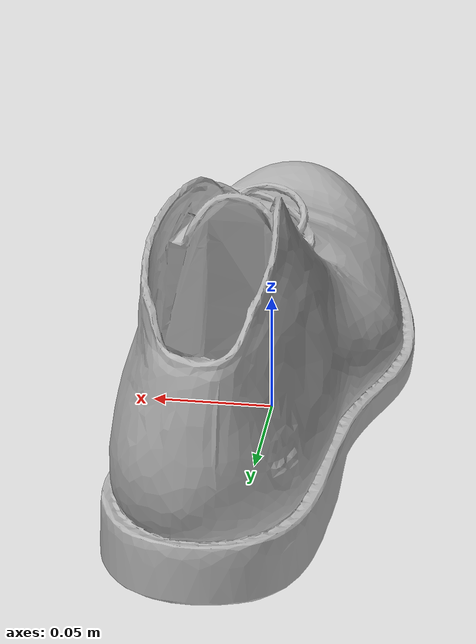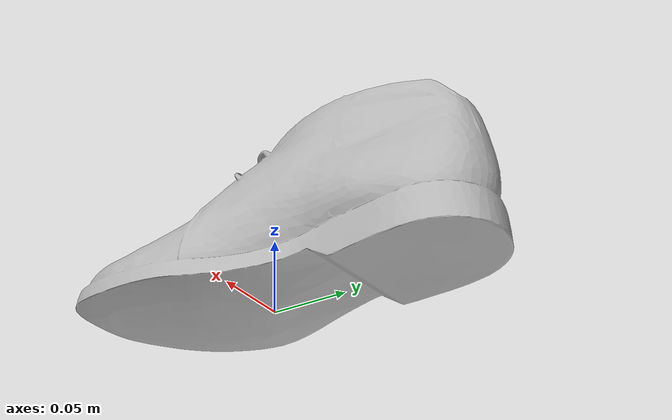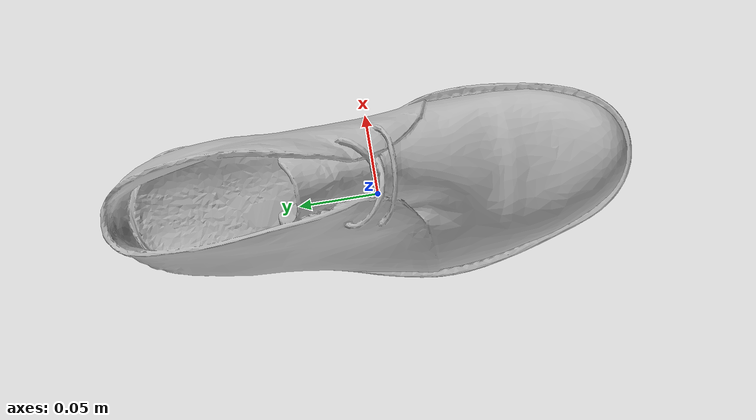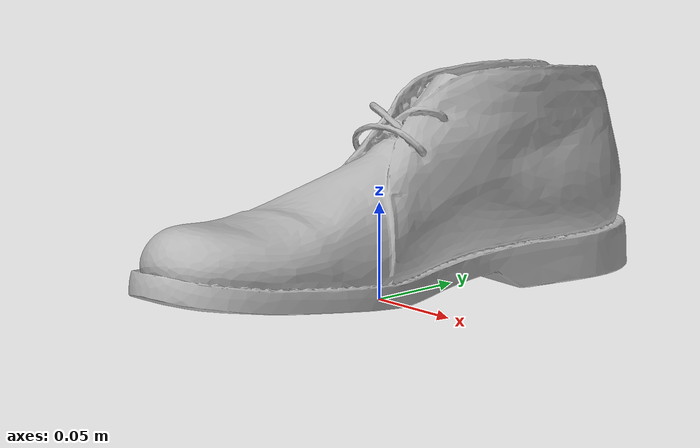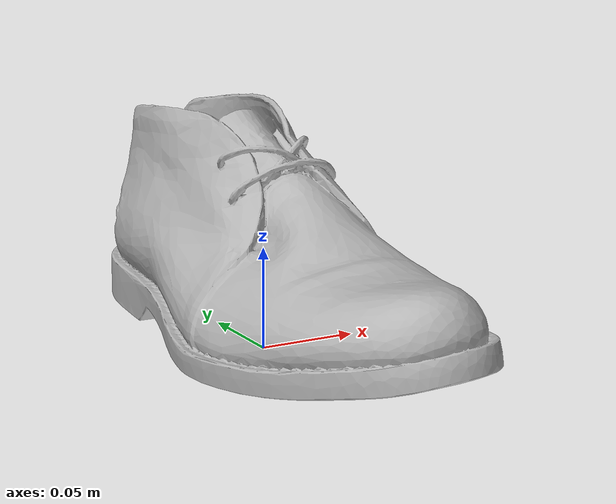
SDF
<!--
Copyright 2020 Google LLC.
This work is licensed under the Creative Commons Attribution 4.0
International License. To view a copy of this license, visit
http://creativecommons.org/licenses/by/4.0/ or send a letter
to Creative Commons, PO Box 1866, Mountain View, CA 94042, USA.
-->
<?xml version="1.0" ?>
<sdf version="1.6">
  <model name="Timberland_Mens_Earthkeepers_Stormbuck_Chukka">
    <link name="link_0">
      <visual name="visual">
        <geometry>
          <mesh>
            <uri>model://boots/meshes/model.obj</uri>
          </mesh>
        </geometry>
      </visual>
      <collision name="collision_0">
        <geometry>
          <mesh>
            <uri>model://boots/meshes/model.obj</uri>
          </mesh>
        </geometry>
      </collision>
    </link>
  </model>
</sdf>
